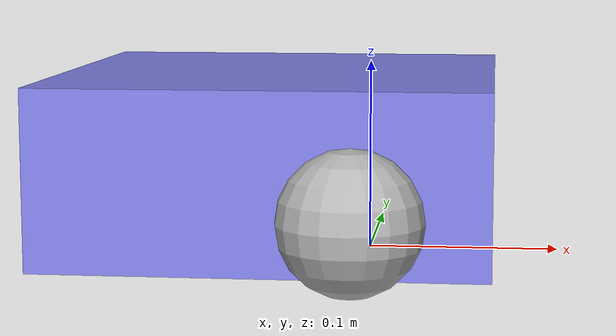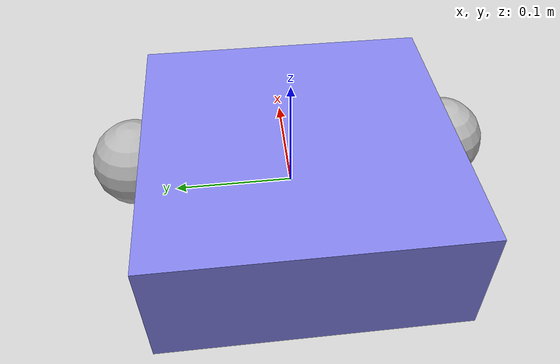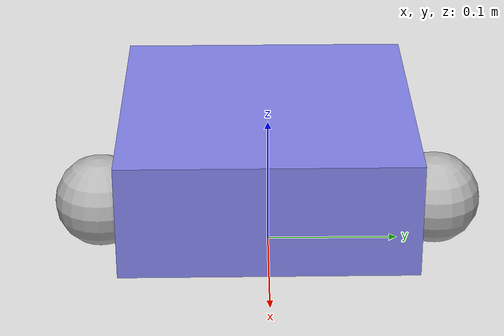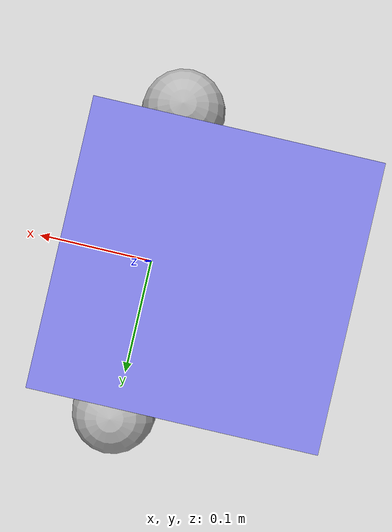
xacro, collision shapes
<?xml version="1.0"?>
<robot name="jem_355_robot" xmlns:xacro="http://www.ros.org/wiki/xacro">
    <xacro:include filename="$(find jem_355_robot_description)/urdf/mobile_base_gazebo.xacro" />
    <xacro:property name="base_width" value="0.225" />
    <xacro:property name="base_length" value="0.225" />
    <xacro:property name="base_height" value="0.09" />
    <xacro:property name="wheel_radius" value="0.035" />
    <xacro:property name="wheel_length" value="0.02725" />
    <xacro:macro name="box_inertia" params="m x y z o_xyz o_rpy">
        <inertial>
            <mass value="${m}" />
            <origin xyz="${o_xyz}" rpy="${o_rpy}" />
            <inertia ixx="${(m/12) * (z*z + y*y)}" ixy="0" ixz="0"
                    iyy="${(m/12) * (x*x + z*z)}" iyz="0"
                    izz="${(m/12) * (x*x + y*y)}" />
        </inertial>
    </xacro:macro>
    <xacro:macro name="cylinder_inertia" params="m r l o_xyz o_rpy">
        <inertial>
            <mass value="${m}" />
            <origin xyz="${o_xyz}" rpy="${o_rpy}" />
            <inertia ixx="${(m/12) * (3*r*r + l*l)}" ixy="0" ixz="0"
                    iyy="${(m/12) * (3*r*r + l*l)}" iyz="0"
                    izz="${(m/2) * (r*r)}" />
        </inertial>
    </xacro:macro>
    <material name="gray">
        <color rgba="0.7 0.7 0.7 1" />
    </material>
    <material name="blue">
        <color rgba="0.5 0.5 0.9 1" />
    </material>
    <link name="base_footprint" />
    <link name="base_link">
        <visual>
            <geometry>
                <mesh filename="file://$(find jem_355_robot_description)/meshes/mobile_bot.stl" scale="0.001 0.001 0.001"/>
            </geometry>
            <origin xyz="${-base_width/2} -0.0788 0" rpy="0 0 0" />
            <material name="blue" />
        </visual>
        <collision>
            <geometry>
                <box size="${base_length} ${base_width} ${base_height}" />
            </geometry>
            <origin xyz="0 -0.047 -0.03" rpy="0 0 0" />
        </collision>
        <xacro:box_inertia m="5.0" x="${base_length}" y="${base_width}" z="${base_height}"
                           o_xyz="0 0 ${base_height/2}" o_rpy="0 0 0" />
    </link>
    <joint name="base_link_joint" type="fixed">
        <parent link="base_footprint" />
        <child link="base_link" />
        <origin xyz="0 0 0.08" rpy="0 0 ${-pi/2}" />
    </joint>
    <xacro:macro name="wheel_link" params="prefix">
        <link name="${prefix}_wheel_link">
            <visual>
                <geometry>
                    <cylinder radius="${wheel_radius}" length="${wheel_length}" />
                </geometry>
                <origin xyz="0 0 0" rpy="${pi/2} 0 0" />
                <material name="gray" />
            </visual>
            <collision>
                <geometry>
                    <sphere radius="${wheel_radius}" />
                </geometry>
                <origin xyz="0 0 0" rpy="0 0 0" />
            </collision>
            <xacro:cylinder_inertia m="1.0" r="${wheel_radius}" l="${wheel_length}"
                                    o_xyz="0 0 0" o_rpy="${pi / 2.0} 0 0" />
        </link>
    </xacro:macro>
    <xacro:wheel_link prefix="right" />
    <joint name="right_wheel_joint" type="continuous">
        <parent link="base_link" />
        <child link="right_wheel_link" />
        <origin xyz="${base_width/2 + 0.014985} 0 -0.04455" rpy="0 0 ${pi/2}" />
        <axis xyz="0 1 0" />
    </joint>
    <xacro:wheel_link prefix="left" />
    <joint name="left_wheel_joint" type="continuous">
        <parent link="base_link" />
        <child link="left_wheel_link" />
        <origin xyz="-${base_width/2 + 0.014985} 0 -0.04455" rpy="0 0 ${pi/2}" />
        <axis xyz="0 1 0" />
    </joint>
</robot>
